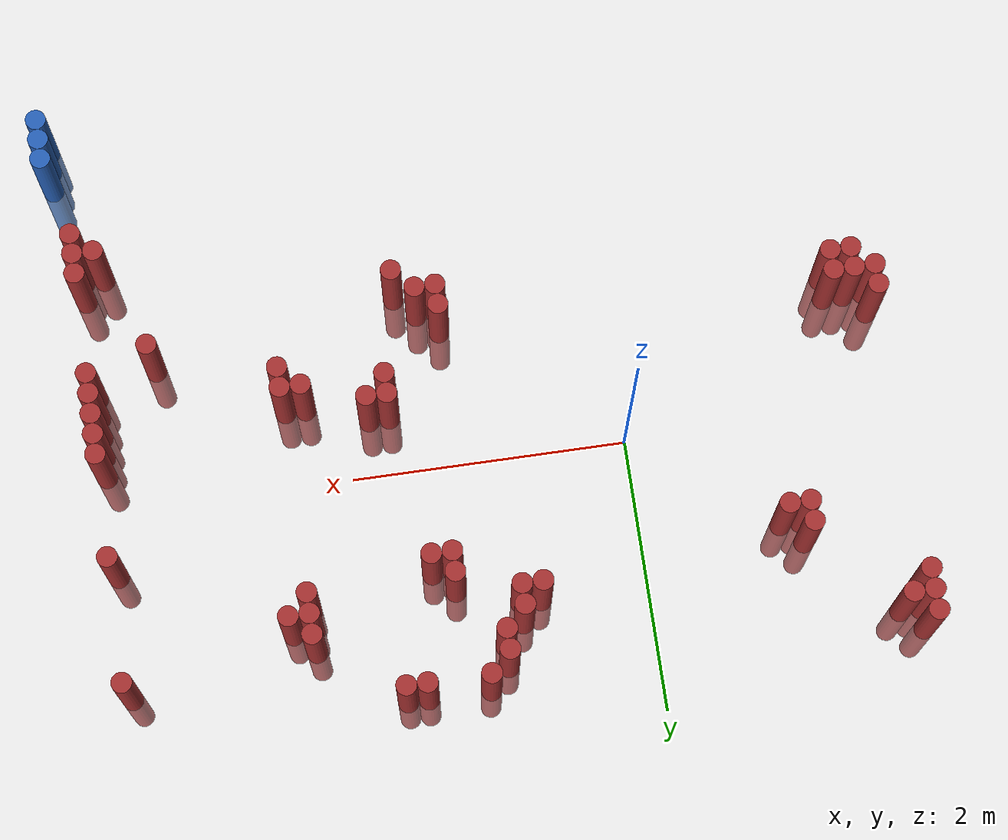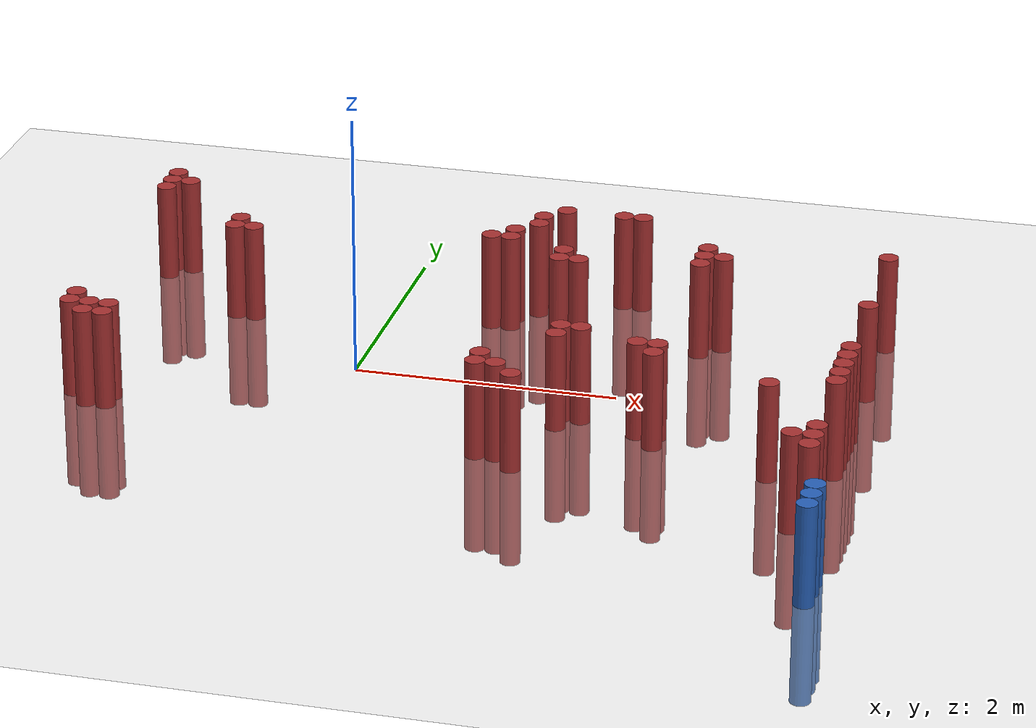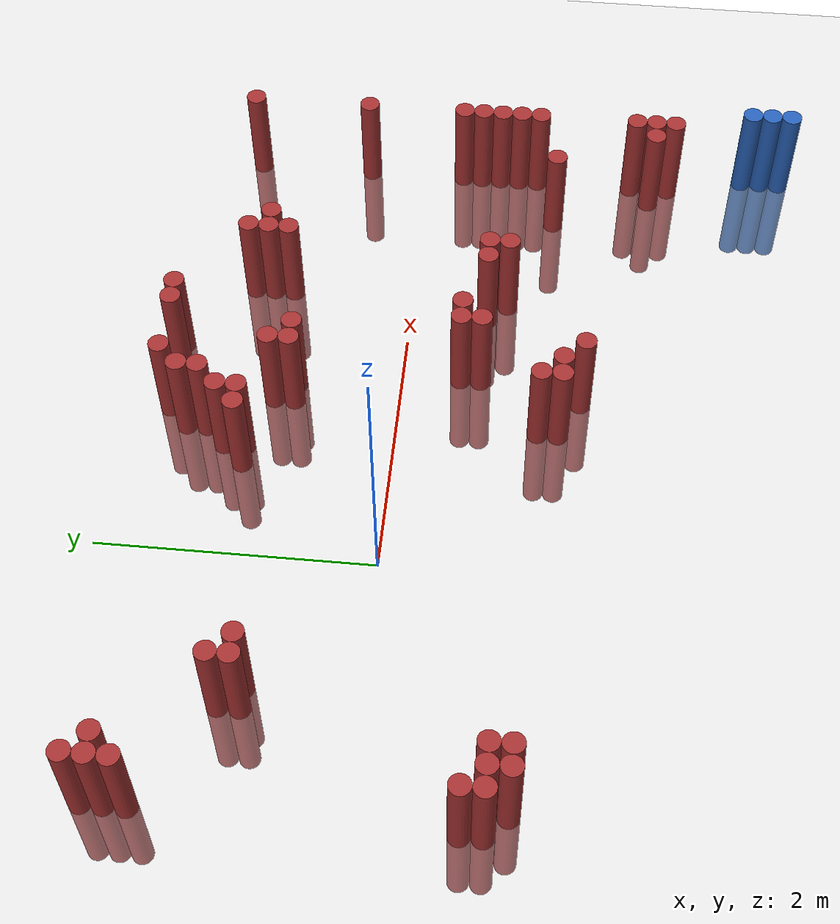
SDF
<sdf version="1.6">
 <world name="default">
  <model name="ground_plane">
   <static>1</static>
   <link name="link">
    <collision name="collision">
     <geometry><plane><normal>0 0 1</normal><size>100 100</size></plane></geometry>
     <surface><friction><ode><mu>100</mu><mu2>50</mu2></ode></friction></surface>
    </collision>
    <visual name="visual">
     <cast_shadows>0</cast_shadows>
     <geometry><plane><normal>0 0 1</normal><size>100 100</size></plane></geometry>
     <material>
      <script><uri>file://media/materials/scripts/gazebo.material</uri><name>Gazebo/Grey</name></script>
     </material>
    </visual>
   </link>
  </model>
  <model name="unit_cylinder_76">
   <static>1</static>
   <pose>3.925000 -2.825000 0.000000 0.000000 0.000000 0.000000</pose>
   <link name="link">
    <inertial>
     <mass>1</mass>
     <inertia><ixx>0.145833</ixx><ixy>0</ixy><ixz>0</ixz><iyy>0.145833</iyy><iyz>0</iyz><izz>0.125</izz></inertia>
    </inertial>
    <collision name="collision">
     <geometry><cylinder><radius>0.075000</radius><length>1.5</length></cylinder></geometry>
    </collision>
    <visual name="visual">
     <geometry><cylinder><radius>0.075000</radius><length>1.5</length></cylinder></geometry>
     <material>
      <ambient>0.152000 0.379000 0.720000 1</ambient>
      <diffuse>0.152000 0.379000 0.720000 1</diffuse>
     </material>
     <material>
      <script><name>Gazebo/Grey</name><uri>file://media/materials/scripts/gazebo.material</uri></script>
     </material>
    </visual>
   </link>
  </model>
  <model name="unit_cylinder_78">
   <static>1</static>
   <pose>3.925000 -2.675000 0.000000 0.000000 0.000000 0.000000</pose>
   <link name="link">
    <inertial>
     <mass>1</mass>
     <inertia><ixx>0.145833</ixx><ixy>0</ixy><ixz>0</ixz><iyy>0.145833</iyy><iyz>0</iyz><izz>0.125</izz></inertia>
    </inertial>
    <collision name="collision">
     <geometry><cylinder><radius>0.075000</radius><length>1.5</length></cylinder></geometry>
    </collision>
    <visual name="visual">
     <geometry><cylinder><radius>0.075000</radius><length>1.5</length></cylinder></geometry>
     <material>
      <ambient>0.152000 0.379000 0.720000 1</ambient>
      <diffuse>0.152000 0.379000 0.720000 1</diffuse>
     </material>
     <material>
      <script><name>Gazebo/Grey</name><uri>file://media/materials/scripts/gazebo.material</uri></script>
     </material>
    </visual>
   </link>
  </model>
  <model name="unit_cylinder_80">
   <static>1</static>
   <pose>3.925000 -2.525000 0.000000 0.000000 0.000000 0.000000</pose>
   <link name="link">
    <inertial>
     <mass>1</mass>
     <inertia><ixx>0.145833</ixx><ixy>0</ixy><ixz>0</ixz><iyy>0.145833</iyy><iyz>0</iyz><izz>0.125</izz></inertia>
    </inertial>
    <collision name="collision">
     <geometry><cylinder><radius>0.075000</radius><length>1.5</length></cylinder></geometry>
    </collision>
    <visual name="visual">
     <geometry><cylinder><radius>0.075000</radius><length>1.5</length></cylinder></geometry>
     <material>
      <ambient>0.152000 0.379000 0.720000 1</ambient>
      <diffuse>0.152000 0.379000 0.720000 1</diffuse>
     </material>
     <material>
      <script><name>Gazebo/Grey</name><uri>file://media/materials/scripts/gazebo.material</uri></script>
     </material>
    </visual>
   </link>
  </model>
  <model name="unit_cylinder_319">
   <static>1</static>
   <pose>-1.925000 -0.875000 0.000000 0.000000 0.000000 0.000000</pose>
   <link name="link">
    <inertial>
     <mass>1</mass>
     <inertia><ixx>0.145833</ixx><ixy>0</ixy><ixz>0</ixz><iyy>0.145833</iyy><iyz>0</iyz><izz>0.125</izz></inertia>
    </inertial>
    <collision name="collision">
     <geometry><cylinder><radius>0.075000</radius><length>1.5</length></cylinder></geometry>
    </collision>
    <visual name="visual">
     <geometry><cylinder><radius>0.075000</radius><length>1.5</length></cylinder></geometry>
     <material>
      <ambient>0.648000 0.192000 0.192000 1</ambient>
      <diffuse>0.648000 0.192000 0.192000 1</diffuse>
     </material>
     <material>
      <script><name>Gazebo/Grey</name><uri>file://media/materials/scripts/gazebo.material</uri></script>
     </material>
    </visual>
   </link>
  </model>
  <model name="unit_cylinder_320">
   <static>1</static>
   <pose>-1.925000 -0.725000 0.000000 0.000000 0.000000 0.000000</pose>
   <link name="link">
    <inertial>
     <mass>1</mass>
     <inertia><ixx>0.145833</ixx><ixy>0</ixy><ixz>0</ixz><iyy>0.145833</iyy><iyz>0</iyz><izz>0.125</izz></inertia>
    </inertial>
    <collision name="collision">
     <geometry><cylinder><radius>0.075000</radius><length>1.5</length></cylinder></geometry>
    </collision>
    <visual name="visual">
     <geometry><cylinder><radius>0.075000</radius><length>1.5</length></cylinder></geometry>
     <material>
      <ambient>0.648000 0.192000 0.192000 1</ambient>
      <diffuse>0.648000 0.192000 0.192000 1</diffuse>
     </material>
     <material>
      <script><name>Gazebo/Grey</name><uri>file://media/materials/scripts/gazebo.material</uri></script>
     </material>
    </visual>
   </link>
  </model>
  <model name="unit_cylinder_321">
   <static>1</static>
   <pose>-1.925000 1.375000 0.000000 0.000000 0.000000 0.000000</pose>
   <link name="link">
    <inertial>
     <mass>1</mass>
     <inertia><ixx>0.145833</ixx><ixy>0</ixy><ixz>0</ixz><iyy>0.145833</iyy><iyz>0</iyz><izz>0.125</izz></inertia>
    </inertial>
    <collision name="collision">
     <geometry><cylinder><radius>0.075000</radius><length>1.5</length></cylinder></geometry>
    </collision>
    <visual name="visual">
     <geometry><cylinder><radius>0.075000</radius><length>1.5</length></cylinder></geometry>
     <material>
      <ambient>0.648000 0.192000 0.192000 1</ambient>
      <diffuse>0.648000 0.192000 0.192000 1</diffuse>
     </material>
     <material>
      <script><name>Gazebo/Grey</name><uri>file://media/materials/scripts/gazebo.material</uri></script>
     </material>
    </visual>
   </link>
  </model>
  <model name="unit_cylinder_322">
   <static>1</static>
   <pose>-1.925000 1.525000 0.000000 0.000000 0.000000 0.000000</pose>
   <link name="link">
    <inertial>
     <mass>1</mass>
     <inertia><ixx>0.145833</ixx><ixy>0</ixy><ixz>0</ixz><iyy>0.145833</iyy><iyz>0</iyz><izz>0.125</izz></inertia>
    </inertial>
    <collision name="collision">
     <geometry><cylinder><radius>0.075000</radius><length>1.5</length></cylinder></geometry>
    </collision>
    <visual name="visual">
     <geometry><cylinder><radius>0.075000</radius><length>1.5</length></cylinder></geometry>
     <material>
      <ambient>0.648000 0.192000 0.192000 1</ambient>
      <diffuse>0.648000 0.192000 0.192000 1</diffuse>
     </material>
     <material>
      <script><name>Gazebo/Grey</name><uri>file://media/materials/scripts/gazebo.material</uri></script>
     </material>
    </visual>
   </link>
  </model>
  <model name="unit_cylinder_323">
   <static>1</static>
   <pose>-1.925000 1.675000 0.000000 0.000000 0.000000 0.000000</pose>
   <link name="link">
    <inertial>
     <mass>1</mass>
     <inertia><ixx>0.145833</ixx><ixy>0</ixy><ixz>0</ixz><iyy>0.145833</iyy><iyz>0</iyz><izz>0.125</izz></inertia>
    </inertial>
    <collision name="collision">
     <geometry><cylinder><radius>0.075000</radius><length>1.5</length></cylinder></geometry>
    </collision>
    <visual name="visual">
     <geometry><cylinder><radius>0.075000</radius><length>1.5</length></cylinder></geometry>
     <material>
      <ambient>0.648000 0.192000 0.192000 1</ambient>
      <diffuse>0.648000 0.192000 0.192000 1</diffuse>
     </material>
     <material>
      <script><name>Gazebo/Grey</name><uri>file://media/materials/scripts/gazebo.material</uri></script>
     </material>
    </visual>
   </link>
  </model>
  <model name="unit_cylinder_327">
   <static>1</static>
   <pose>-1.775000 -1.025000 0.000000 0.000000 0.000000 0.000000</pose>
   <link name="link">
    <inertial>
     <mass>1</mass>
     <inertia><ixx>0.145833</ixx><ixy>0</ixy><ixz>0</ixz><iyy>0.145833</iyy><iyz>0</iyz><izz>0.125</izz></inertia>
    </inertial>
    <collision name="collision">
     <geometry><cylinder><radius>0.075000</radius><length>1.5</length></cylinder></geometry>
    </collision>
    <visual name="visual">
     <geometry><cylinder><radius>0.075000</radius><length>1.5</length></cylinder></geometry>
     <material>
      <ambient>0.648000 0.192000 0.192000 1</ambient>
      <diffuse>0.648000 0.192000 0.192000 1</diffuse>
     </material>
     <material>
      <script><name>Gazebo/Grey</name><uri>file://media/materials/scripts/gazebo.material</uri></script>
     </material>
    </visual>
   </link>
  </model>
  <model name="unit_cylinder_328">
   <static>1</static>
   <pose>-1.775000 -0.875000 0.000000 0.000000 0.000000 0.000000</pose>
   <link name="link">
    <inertial>
     <mass>1</mass>
     <inertia><ixx>0.145833</ixx><ixy>0</ixy><ixz>0</ixz><iyy>0.145833</iyy><iyz>0</iyz><izz>0.125</izz></inertia>
    </inertial>
    <collision name="collision">
     <geometry><cylinder><radius>0.075000</radius><length>1.5</length></cylinder></geometry>
    </collision>
    <visual name="visual">
     <geometry><cylinder><radius>0.075000</radius><length>1.5</length></cylinder></geometry>
     <material>
      <ambient>0.648000 0.192000 0.192000 1</ambient>
      <diffuse>0.648000 0.192000 0.192000 1</diffuse>
     </material>
     <material>
      <script><name>Gazebo/Grey</name><uri>file://media/materials/scripts/gazebo.material</uri></script>
     </material>
    </visual>
   </link>
  </model>
  <model name="unit_cylinder_329">
   <static>1</static>
   <pose>-1.775000 1.525000 0.000000 0.000000 0.000000 0.000000</pose>
   <link name="link">
    <inertial>
     <mass>1</mass>
     <inertia><ixx>0.145833</ixx><ixy>0</ixy><ixz>0</ixz><iyy>0.145833</iyy><iyz>0</iyz><izz>0.125</izz></inertia>
    </inertial>
    <collision name="collision">
     <geometry><cylinder><radius>0.075000</radius><length>1.5</length></cylinder></geometry>
    </collision>
    <visual name="visual">
     <geometry><cylinder><radius>0.075000</radius><length>1.5</length></cylinder></geometry>
     <material>
      <ambient>0.648000 0.192000 0.192000 1</ambient>
      <diffuse>0.648000 0.192000 0.192000 1</diffuse>
     </material>
     <material>
      <script><name>Gazebo/Grey</name><uri>file://media/materials/scripts/gazebo.material</uri></script>
     </material>
    </visual>
   </link>
  </model>
  <model name="unit_cylinder_336">
   <static>1</static>
   <pose>-1.625000 -1.025000 0.000000 0.000000 0.000000 0.000000</pose>
   <link name="link">
    <inertial>
     <mass>1</mass>
     <inertia><ixx>0.145833</ixx><ixy>0</ixy><ixz>0</ixz><iyy>0.145833</iyy><iyz>0</iyz><izz>0.125</izz></inertia>
    </inertial>
    <collision name="collision">
     <geometry><cylinder><radius>0.075000</radius><length>1.5</length></cylinder></geometry>
    </collision>
    <visual name="visual">
     <geometry><cylinder><radius>0.075000</radius><length>1.5</length></cylinder></geometry>
     <material>
      <ambient>0.648000 0.192000 0.192000 1</ambient>
      <diffuse>0.648000 0.192000 0.192000 1</diffuse>
     </material>
     <material>
      <script><name>Gazebo/Grey</name><uri>file://media/materials/scripts/gazebo.material</uri></script>
     </material>
    </visual>
   </link>
  </model>
  <model name="unit_cylinder_337">
   <static>1</static>
   <pose>-1.625000 -0.875000 0.000000 0.000000 0.000000 0.000000</pose>
   <link name="link">
    <inertial>
     <mass>1</mass>
     <inertia><ixx>0.145833</ixx><ixy>0</ixy><ixz>0</ixz><iyy>0.145833</iyy><iyz>0</iyz><izz>0.125</izz></inertia>
    </inertial>
    <collision name="collision">
     <geometry><cylinder><radius>0.075000</radius><length>1.5</length></cylinder></geometry>
    </collision>
    <visual name="visual">
     <geometry><cylinder><radius>0.075000</radius><length>1.5</length></cylinder></geometry>
     <material>
      <ambient>0.648000 0.192000 0.192000 1</ambient>
      <diffuse>0.648000 0.192000 0.192000 1</diffuse>
     </material>
     <material>
      <script><name>Gazebo/Grey</name><uri>file://media/materials/scripts/gazebo.material</uri></script>
     </material>
    </visual>
   </link>
  </model>
  <model name="unit_cylinder_356">
   <static>1</static>
   <pose>-1.175000 0.775000 0.000000 0.000000 0.000000 0.000000</pose>
   <link name="link">
    <inertial>
     <mass>1</mass>
     <inertia><ixx>0.145833</ixx><ixy>0</ixy><ixz>0</ixz><iyy>0.145833</iyy><iyz>0</iyz><izz>0.125</izz></inertia>
    </inertial>
    <collision name="collision">
     <geometry><cylinder><radius>0.075000</radius><length>1.5</length></cylinder></geometry>
    </collision>
    <visual name="visual">
     <geometry><cylinder><radius>0.075000</radius><length>1.5</length></cylinder></geometry>
     <material>
      <ambient>0.648000 0.192000 0.192000 1</ambient>
      <diffuse>0.648000 0.192000 0.192000 1</diffuse>
     </material>
     <material>
      <script><name>Gazebo/Grey</name><uri>file://media/materials/scripts/gazebo.material</uri></script>
     </material>
    </visual>
   </link>
  </model>
  <model name="unit_cylinder_357">
   <static>1</static>
   <pose>-1.175000 0.925000 0.000000 0.000000 0.000000 0.000000</pose>
   <link name="link">
    <inertial>
     <mass>1</mass>
     <inertia><ixx>0.145833</ixx><ixy>0</ixy><ixz>0</ixz><iyy>0.145833</iyy><iyz>0</iyz><izz>0.125</izz></inertia>
    </inertial>
    <collision name="collision">
     <geometry><cylinder><radius>0.075000</radius><length>1.5</length></cylinder></geometry>
    </collision>
    <visual name="visual">
     <geometry><cylinder><radius>0.075000</radius><length>1.5</length></cylinder></geometry>
     <material>
      <ambient>0.648000 0.192000 0.192000 1</ambient>
      <diffuse>0.648000 0.192000 0.192000 1</diffuse>
     </material>
     <material>
      <script><name>Gazebo/Grey</name><uri>file://media/materials/scripts/gazebo.material</uri></script>
     </material>
    </visual>
   </link>
  </model>
  <model name="unit_cylinder_364">
   <static>1</static>
   <pose>-1.025000 0.775000 0.000000 0.000000 0.000000 0.000000</pose>
   <link name="link">
    <inertial>
     <mass>1</mass>
     <inertia><ixx>0.145833</ixx><ixy>0</ixy><ixz>0</ixz><iyy>0.145833</iyy><iyz>0</iyz><izz>0.125</izz></inertia>
    </inertial>
    <collision name="collision">
     <geometry><cylinder><radius>0.075000</radius><length>1.5</length></cylinder></geometry>
    </collision>
    <visual name="visual">
     <geometry><cylinder><radius>0.075000</radius><length>1.5</length></cylinder></geometry>
     <material>
      <ambient>0.648000 0.192000 0.192000 1</ambient>
      <diffuse>0.648000 0.192000 0.192000 1</diffuse>
     </material>
     <material>
      <script><name>Gazebo/Grey</name><uri>file://media/materials/scripts/gazebo.material</uri></script>
     </material>
    </visual>
   </link>
  </model>
  <model name="unit_cylinder_389">
   <static>1</static>
   <pose>0.775000 1.075000 0.000000 0.000000 0.000000 0.000000</pose>
   <link name="link">
    <inertial>
     <mass>1</mass>
     <inertia><ixx>0.145833</ixx><ixy>0</ixy><ixz>0</ixz><iyy>0.145833</iyy><iyz>0</iyz><izz>0.125</izz></inertia>
    </inertial>
    <collision name="collision">
     <geometry><cylinder><radius>0.075000</radius><length>1.5</length></cylinder></geometry>
    </collision>
    <visual name="visual">
     <geometry><cylinder><radius>0.075000</radius><length>1.5</length></cylinder></geometry>
     <material>
      <ambient>0.648000 0.192000 0.192000 1</ambient>
      <diffuse>0.648000 0.192000 0.192000 1</diffuse>
     </material>
     <material>
      <script><name>Gazebo/Grey</name><uri>file://media/materials/scripts/gazebo.material</uri></script>
     </material>
    </visual>
   </link>
  </model>
  <model name="unit_cylinder_390">
   <static>1</static>
   <pose>0.925000 1.075000 0.000000 0.000000 0.000000 0.000000</pose>
   <link name="link">
    <inertial>
     <mass>1</mass>
     <inertia><ixx>0.145833</ixx><ixy>0</ixy><ixz>0</ixz><iyy>0.145833</iyy><iyz>0</iyz><izz>0.125</izz></inertia>
    </inertial>
    <collision name="collision">
     <geometry><cylinder><radius>0.075000</radius><length>1.5</length></cylinder></geometry>
    </collision>
    <visual name="visual">
     <geometry><cylinder><radius>0.075000</radius><length>1.5</length></cylinder></geometry>
     <material>
      <ambient>0.648000 0.192000 0.192000 1</ambient>
      <diffuse>0.648000 0.192000 0.192000 1</diffuse>
     </material>
     <material>
      <script><name>Gazebo/Grey</name><uri>file://media/materials/scripts/gazebo.material</uri></script>
     </material>
    </visual>
   </link>
  </model>
  <model name="unit_cylinder_391">
   <static>1</static>
   <pose>0.925000 1.225000 0.000000 0.000000 0.000000 0.000000</pose>
   <link name="link">
    <inertial>
     <mass>1</mass>
     <inertia><ixx>0.145833</ixx><ixy>0</ixy><ixz>0</ixz><iyy>0.145833</iyy><iyz>0</iyz><izz>0.125</izz></inertia>
    </inertial>
    <collision name="collision">
     <geometry><cylinder><radius>0.075000</radius><length>1.5</length></cylinder></geometry>
    </collision>
    <visual name="visual">
     <geometry><cylinder><radius>0.075000</radius><length>1.5</length></cylinder></geometry>
     <material>
      <ambient>0.648000 0.192000 0.192000 1</ambient>
      <diffuse>0.648000 0.192000 0.192000 1</diffuse>
     </material>
     <material>
      <script><name>Gazebo/Grey</name><uri>file://media/materials/scripts/gazebo.material</uri></script>
     </material>
    </visual>
   </link>
  </model>
  <model name="unit_cylinder_392">
   <static>1</static>
   <pose>1.075000 1.375000 0.000000 0.000000 0.000000 0.000000</pose>
   <link name="link">
    <inertial>
     <mass>1</mass>
     <inertia><ixx>0.145833</ixx><ixy>0</ixy><ixz>0</ixz><iyy>0.145833</iyy><iyz>0</iyz><izz>0.125</izz></inertia>
    </inertial>
    <collision name="collision">
     <geometry><cylinder><radius>0.075000</radius><length>1.5</length></cylinder></geometry>
    </collision>
    <visual name="visual">
     <geometry><cylinder><radius>0.075000</radius><length>1.5</length></cylinder></geometry>
     <material>
      <ambient>0.648000 0.192000 0.192000 1</ambient>
      <diffuse>0.648000 0.192000 0.192000 1</diffuse>
     </material>
     <material>
      <script><name>Gazebo/Grey</name><uri>file://media/materials/scripts/gazebo.material</uri></script>
     </material>
    </visual>
   </link>
  </model>
  <model name="unit_cylinder_393">
   <static>1</static>
   <pose>1.075000 1.525000 0.000000 0.000000 0.000000 0.000000</pose>
   <link name="link">
    <inertial>
     <mass>1</mass>
     <inertia><ixx>0.145833</ixx><ixy>0</ixy><ixz>0</ixz><iyy>0.145833</iyy><iyz>0</iyz><izz>0.125</izz></inertia>
    </inertial>
    <collision name="collision">
     <geometry><cylinder><radius>0.075000</radius><length>1.5</length></cylinder></geometry>
    </collision>
    <visual name="visual">
     <geometry><cylinder><radius>0.075000</radius><length>1.5</length></cylinder></geometry>
     <material>
      <ambient>0.648000 0.192000 0.192000 1</ambient>
      <diffuse>0.648000 0.192000 0.192000 1</diffuse>
     </material>
     <material>
      <script><name>Gazebo/Grey</name><uri>file://media/materials/scripts/gazebo.material</uri></script>
     </material>
    </visual>
   </link>
  </model>
  <model name="unit_cylinder_396">
   <static>1</static>
   <pose>1.225000 -1.175000 0.000000 0.000000 0.000000 0.000000</pose>
   <link name="link">
    <inertial>
     <mass>1</mass>
     <inertia><ixx>0.145833</ixx><ixy>0</ixy><ixz>0</ixz><iyy>0.145833</iyy><iyz>0</iyz><izz>0.125</izz></inertia>
    </inertial>
    <collision name="collision">
     <geometry><cylinder><radius>0.075000</radius><length>1.5</length></cylinder></geometry>
    </collision>
    <visual name="visual">
     <geometry><cylinder><radius>0.075000</radius><length>1.5</length></cylinder></geometry>
     <material>
      <ambient>0.648000 0.192000 0.192000 1</ambient>
      <diffuse>0.648000 0.192000 0.192000 1</diffuse>
     </material>
     <material>
      <script><name>Gazebo/Grey</name><uri>file://media/materials/scripts/gazebo.material</uri></script>
     </material>
    </visual>
   </link>
  </model>
  <model name="unit_cylinder_397">
   <static>1</static>
   <pose>1.225000 -1.025000 0.000000 0.000000 0.000000 0.000000</pose>
   <link name="link">
    <inertial>
     <mass>1</mass>
     <inertia><ixx>0.145833</ixx><ixy>0</ixy><ixz>0</ixz><iyy>0.145833</iyy><iyz>0</iyz><izz>0.125</izz></inertia>
    </inertial>
    <collision name="collision">
     <geometry><cylinder><radius>0.075000</radius><length>1.5</length></cylinder></geometry>
    </collision>
    <visual name="visual">
     <geometry><cylinder><radius>0.075000</radius><length>1.5</length></cylinder></geometry>
     <material>
      <ambient>0.648000 0.192000 0.192000 1</ambient>
      <diffuse>0.648000 0.192000 0.192000 1</diffuse>
     </material>
     <material>
      <script><name>Gazebo/Grey</name><uri>file://media/materials/scripts/gazebo.material</uri></script>
     </material>
    </visual>
   </link>
  </model>
  <model name="unit_cylinder_398">
   <static>1</static>
   <pose>1.225000 1.675000 0.000000 0.000000 0.000000 0.000000</pose>
   <link name="link">
    <inertial>
     <mass>1</mass>
     <inertia><ixx>0.145833</ixx><ixy>0</ixy><ixz>0</ixz><iyy>0.145833</iyy><iyz>0</iyz><izz>0.125</izz></inertia>
    </inertial>
    <collision name="collision">
     <geometry><cylinder><radius>0.075000</radius><length>1.5</length></cylinder></geometry>
    </collision>
    <visual name="visual">
     <geometry><cylinder><radius>0.075000</radius><length>1.5</length></cylinder></geometry>
     <material>
      <ambient>0.648000 0.192000 0.192000 1</ambient>
      <diffuse>0.648000 0.192000 0.192000 1</diffuse>
     </material>
     <material>
      <script><name>Gazebo/Grey</name><uri>file://media/materials/scripts/gazebo.material</uri></script>
     </material>
    </visual>
   </link>
  </model>
  <model name="unit_cylinder_401">
   <static>1</static>
   <pose>1.375000 -1.175000 0.000000 0.000000 0.000000 0.000000</pose>
   <link name="link">
    <inertial>
     <mass>1</mass>
     <inertia><ixx>0.145833</ixx><ixy>0</ixy><ixz>0</ixz><iyy>0.145833</iyy><iyz>0</iyz><izz>0.125</izz></inertia>
    </inertial>
    <collision name="collision">
     <geometry><cylinder><radius>0.075000</radius><length>1.5</length></cylinder></geometry>
    </collision>
    <visual name="visual">
     <geometry><cylinder><radius>0.075000</radius><length>1.5</length></cylinder></geometry>
     <material>
      <ambient>0.648000 0.192000 0.192000 1</ambient>
      <diffuse>0.648000 0.192000 0.192000 1</diffuse>
     </material>
     <material>
      <script><name>Gazebo/Grey</name><uri>file://media/materials/scripts/gazebo.material</uri></script>
     </material>
    </visual>
   </link>
  </model>
  <model name="unit_cylinder_402">
   <static>1</static>
   <pose>1.375000 0.775000 0.000000 0.000000 0.000000 0.000000</pose>
   <link name="link">
    <inertial>
     <mass>1</mass>
     <inertia><ixx>0.145833</ixx><ixy>0</ixy><ixz>0</ixz><iyy>0.145833</iyy><iyz>0</iyz><izz>0.125</izz></inertia>
    </inertial>
    <collision name="collision">
     <geometry><cylinder><radius>0.075000</radius><length>1.5</length></cylinder></geometry>
    </collision>
    <visual name="visual">
     <geometry><cylinder><radius>0.075000</radius><length>1.5</length></cylinder></geometry>
     <material>
      <ambient>0.648000 0.192000 0.192000 1</ambient>
      <diffuse>0.648000 0.192000 0.192000 1</diffuse>
     </material>
     <material>
      <script><name>Gazebo/Grey</name><uri>file://media/materials/scripts/gazebo.material</uri></script>
     </material>
    </visual>
   </link>
  </model>
  <model name="unit_cylinder_403">
   <static>1</static>
   <pose>1.375000 0.925000 0.000000 0.000000 0.000000 0.000000</pose>
   <link name="link">
    <inertial>
     <mass>1</mass>
     <inertia><ixx>0.145833</ixx><ixy>0</ixy><ixz>0</ixz><iyy>0.145833</iyy><iyz>0</iyz><izz>0.125</izz></inertia>
    </inertial>
    <collision name="collision">
     <geometry><cylinder><radius>0.075000</radius><length>1.5</length></cylinder></geometry>
    </collision>
    <visual name="visual">
     <geometry><cylinder><radius>0.075000</radius><length>1.5</length></cylinder></geometry>
     <material>
      <ambient>0.648000 0.192000 0.192000 1</ambient>
      <diffuse>0.648000 0.192000 0.192000 1</diffuse>
     </material>
     <material>
      <script><name>Gazebo/Grey</name><uri>file://media/materials/scripts/gazebo.material</uri></script>
     </material>
    </visual>
   </link>
  </model>
  <model name="unit_cylinder_405">
   <static>1</static>
   <pose>1.525000 -1.325000 0.000000 0.000000 0.000000 0.000000</pose>
   <link name="link">
    <inertial>
     <mass>1</mass>
     <inertia><ixx>0.145833</ixx><ixy>0</ixy><ixz>0</ixz><iyy>0.145833</iyy><iyz>0</iyz><izz>0.125</izz></inertia>
    </inertial>
    <collision name="collision">
     <geometry><cylinder><radius>0.075000</radius><length>1.5</length></cylinder></geometry>
    </collision>
    <visual name="visual">
     <geometry><cylinder><radius>0.075000</radius><length>1.5</length></cylinder></geometry>
     <material>
      <ambient>0.648000 0.192000 0.192000 1</ambient>
      <diffuse>0.648000 0.192000 0.192000 1</diffuse>
     </material>
     <material>
      <script><name>Gazebo/Grey</name><uri>file://media/materials/scripts/gazebo.material</uri></script>
     </material>
    </visual>
   </link>
  </model>
  <model name="unit_cylinder_406">
   <static>1</static>
   <pose>1.525000 0.775000 0.000000 0.000000 0.000000 0.000000</pose>
   <link name="link">
    <inertial>
     <mass>1</mass>
     <inertia><ixx>0.145833</ixx><ixy>0</ixy><ixz>0</ixz><iyy>0.145833</iyy><iyz>0</iyz><izz>0.125</izz></inertia>
    </inertial>
    <collision name="collision">
     <geometry><cylinder><radius>0.075000</radius><length>1.5</length></cylinder></geometry>
    </collision>
    <visual name="visual">
     <geometry><cylinder><radius>0.075000</radius><length>1.5</length></cylinder></geometry>
     <material>
      <ambient>0.648000 0.192000 0.192000 1</ambient>
      <diffuse>0.648000 0.192000 0.192000 1</diffuse>
     </material>
     <material>
      <script><name>Gazebo/Grey</name><uri>file://media/materials/scripts/gazebo.material</uri></script>
     </material>
    </visual>
   </link>
  </model>
  <model name="unit_cylinder_408">
   <static>1</static>
   <pose>1.675000 -0.575000 0.000000 0.000000 0.000000 0.000000</pose>
   <link name="link">
    <inertial>
     <mass>1</mass>
     <inertia><ixx>0.145833</ixx><ixy>0</ixy><ixz>0</ixz><iyy>0.145833</iyy><iyz>0</iyz><izz>0.125</izz></inertia>
    </inertial>
    <collision name="collision">
     <geometry><cylinder><radius>0.075000</radius><length>1.5</length></cylinder></geometry>
    </collision>
    <visual name="visual">
     <geometry><cylinder><radius>0.075000</radius><length>1.5</length></cylinder></geometry>
     <material>
      <ambient>0.648000 0.192000 0.192000 1</ambient>
      <diffuse>0.648000 0.192000 0.192000 1</diffuse>
     </material>
     <material>
      <script><name>Gazebo/Grey</name><uri>file://media/materials/scripts/gazebo.material</uri></script>
     </material>
    </visual>
   </link>
  </model>
  <model name="unit_cylinder_409">
   <static>1</static>
   <pose>1.675000 -0.425000 0.000000 0.000000 0.000000 0.000000</pose>
   <link name="link">
    <inertial>
     <mass>1</mass>
     <inertia><ixx>0.145833</ixx><ixy>0</ixy><ixz>0</ixz><iyy>0.145833</iyy><iyz>0</iyz><izz>0.125</izz></inertia>
    </inertial>
    <collision name="collision">
     <geometry><cylinder><radius>0.075000</radius><length>1.5</length></cylinder></geometry>
    </collision>
    <visual name="visual">
     <geometry><cylinder><radius>0.075000</radius><length>1.5</length></cylinder></geometry>
     <material>
      <ambient>0.648000 0.192000 0.192000 1</ambient>
      <diffuse>0.648000 0.192000 0.192000 1</diffuse>
     </material>
     <material>
      <script><name>Gazebo/Grey</name><uri>file://media/materials/scripts/gazebo.material</uri></script>
     </material>
    </visual>
   </link>
  </model>
  <model name="unit_cylinder_410">
   <static>1</static>
   <pose>1.675000 1.675000 0.000000 0.000000 0.000000 0.000000</pose>
   <link name="link">
    <inertial>
     <mass>1</mass>
     <inertia><ixx>0.145833</ixx><ixy>0</ixy><ixz>0</ixz><iyy>0.145833</iyy><iyz>0</iyz><izz>0.125</izz></inertia>
    </inertial>
    <collision name="collision">
     <geometry><cylinder><radius>0.075000</radius><length>1.5</length></cylinder></geometry>
    </collision>
    <visual name="visual">
     <geometry><cylinder><radius>0.075000</radius><length>1.5</length></cylinder></geometry>
     <material>
      <ambient>0.648000 0.192000 0.192000 1</ambient>
      <diffuse>0.648000 0.192000 0.192000 1</diffuse>
     </material>
     <material>
      <script><name>Gazebo/Grey</name><uri>file://media/materials/scripts/gazebo.material</uri></script>
     </material>
    </visual>
   </link>
  </model>
  <model name="unit_cylinder_413">
   <static>1</static>
   <pose>1.825000 -0.425000 0.000000 0.000000 0.000000 0.000000</pose>
   <link name="link">
    <inertial>
     <mass>1</mass>
     <inertia><ixx>0.145833</ixx><ixy>0</ixy><ixz>0</ixz><iyy>0.145833</iyy><iyz>0</iyz><izz>0.125</izz></inertia>
    </inertial>
    <collision name="collision">
     <geometry><cylinder><radius>0.075000</radius><length>1.5</length></cylinder></geometry>
    </collision>
    <visual name="visual">
     <geometry><cylinder><radius>0.075000</radius><length>1.5</length></cylinder></geometry>
     <material>
      <ambient>0.648000 0.192000 0.192000 1</ambient>
      <diffuse>0.648000 0.192000 0.192000 1</diffuse>
     </material>
     <material>
      <script><name>Gazebo/Grey</name><uri>file://media/materials/scripts/gazebo.material</uri></script>
     </material>
    </visual>
   </link>
  </model>
  <model name="unit_cylinder_414">
   <static>1</static>
   <pose>1.825000 1.675000 0.000000 0.000000 0.000000 0.000000</pose>
   <link name="link">
    <inertial>
     <mass>1</mass>
     <inertia><ixx>0.145833</ixx><ixy>0</ixy><ixz>0</ixz><iyy>0.145833</iyy><iyz>0</iyz><izz>0.125</izz></inertia>
    </inertial>
    <collision name="collision">
     <geometry><cylinder><radius>0.075000</radius><length>1.5</length></cylinder></geometry>
    </collision>
    <visual name="visual">
     <geometry><cylinder><radius>0.075000</radius><length>1.5</length></cylinder></geometry>
     <material>
      <ambient>0.648000 0.192000 0.192000 1</ambient>
      <diffuse>0.648000 0.192000 0.192000 1</diffuse>
     </material>
     <material>
      <script><name>Gazebo/Grey</name><uri>file://media/materials/scripts/gazebo.material</uri></script>
     </material>
    </visual>
   </link>
  </model>
  <model name="unit_cylinder_416">
   <static>1</static>
   <pose>2.275000 -0.575000 0.000000 0.000000 0.000000 0.000000</pose>
   <link name="link">
    <inertial>
     <mass>1</mass>
     <inertia><ixx>0.145833</ixx><ixy>0</ixy><ixz>0</ixz><iyy>0.145833</iyy><iyz>0</iyz><izz>0.125</izz></inertia>
    </inertial>
    <collision name="collision">
     <geometry><cylinder><radius>0.075000</radius><length>1.5</length></cylinder></geometry>
    </collision>
    <visual name="visual">
     <geometry><cylinder><radius>0.075000</radius><length>1.5</length></cylinder></geometry>
     <material>
      <ambient>0.648000 0.192000 0.192000 1</ambient>
      <diffuse>0.648000 0.192000 0.192000 1</diffuse>
     </material>
     <material>
      <script><name>Gazebo/Grey</name><uri>file://media/materials/scripts/gazebo.material</uri></script>
     </material>
    </visual>
   </link>
  </model>
  <model name="unit_cylinder_418">
   <static>1</static>
   <pose>2.425000 -0.725000 0.000000 0.000000 0.000000 0.000000</pose>
   <link name="link">
    <inertial>
     <mass>1</mass>
     <inertia><ixx>0.145833</ixx><ixy>0</ixy><ixz>0</ixz><iyy>0.145833</iyy><iyz>0</iyz><izz>0.125</izz></inertia>
    </inertial>
    <collision name="collision">
     <geometry><cylinder><radius>0.075000</radius><length>1.5</length></cylinder></geometry>
    </collision>
    <visual name="visual">
     <geometry><cylinder><radius>0.075000</radius><length>1.5</length></cylinder></geometry>
     <material>
      <ambient>0.648000 0.192000 0.192000 1</ambient>
      <diffuse>0.648000 0.192000 0.192000 1</diffuse>
     </material>
     <material>
      <script><name>Gazebo/Grey</name><uri>file://media/materials/scripts/gazebo.material</uri></script>
     </material>
    </visual>
   </link>
  </model>
  <model name="unit_cylinder_419">
   <static>1</static>
   <pose>2.425000 -0.575000 0.000000 0.000000 0.000000 0.000000</pose>
   <link name="link">
    <inertial>
     <mass>1</mass>
     <inertia><ixx>0.145833</ixx><ixy>0</ixy><ixz>0</ixz><iyy>0.145833</iyy><iyz>0</iyz><izz>0.125</izz></inertia>
    </inertial>
    <collision name="collision">
     <geometry><cylinder><radius>0.075000</radius><length>1.5</length></cylinder></geometry>
    </collision>
    <visual name="visual">
     <geometry><cylinder><radius>0.075000</radius><length>1.5</length></cylinder></geometry>
     <material>
      <ambient>0.648000 0.192000 0.192000 1</ambient>
      <diffuse>0.648000 0.192000 0.192000 1</diffuse>
     </material>
     <material>
      <script><name>Gazebo/Grey</name><uri>file://media/materials/scripts/gazebo.material</uri></script>
     </material>
    </visual>
   </link>
  </model>
  <model name="unit_cylinder_420">
   <static>1</static>
   <pose>2.425000 0.925000 0.000000 0.000000 0.000000 0.000000</pose>
   <link name="link">
    <inertial>
     <mass>1</mass>
     <inertia><ixx>0.145833</ixx><ixy>0</ixy><ixz>0</ixz><iyy>0.145833</iyy><iyz>0</iyz><izz>0.125</izz></inertia>
    </inertial>
    <collision name="collision">
     <geometry><cylinder><radius>0.075000</radius><length>1.5</length></cylinder></geometry>
    </collision>
    <visual name="visual">
     <geometry><cylinder><radius>0.075000</radius><length>1.5</length></cylinder></geometry>
     <material>
      <ambient>0.648000 0.192000 0.192000 1</ambient>
      <diffuse>0.648000 0.192000 0.192000 1</diffuse>
     </material>
     <material>
      <script><name>Gazebo/Grey</name><uri>file://media/materials/scripts/gazebo.material</uri></script>
     </material>
    </visual>
   </link>
  </model>
  <model name="unit_cylinder_421">
   <static>1</static>
   <pose>2.425000 1.075000 0.000000 0.000000 0.000000 0.000000</pose>
   <link name="link">
    <inertial>
     <mass>1</mass>
     <inertia><ixx>0.145833</ixx><ixy>0</ixy><ixz>0</ixz><iyy>0.145833</iyy><iyz>0</iyz><izz>0.125</izz></inertia>
    </inertial>
    <collision name="collision">
     <geometry><cylinder><radius>0.075000</radius><length>1.5</length></cylinder></geometry>
    </collision>
    <visual name="visual">
     <geometry><cylinder><radius>0.075000</radius><length>1.5</length></cylinder></geometry>
     <material>
      <ambient>0.648000 0.192000 0.192000 1</ambient>
      <diffuse>0.648000 0.192000 0.192000 1</diffuse>
     </material>
     <material>
      <script><name>Gazebo/Grey</name><uri>file://media/materials/scripts/gazebo.material</uri></script>
     </material>
    </visual>
   </link>
  </model>
  <model name="unit_cylinder_422">
   <static>1</static>
   <pose>2.425000 1.225000 0.000000 0.000000 0.000000 0.000000</pose>
   <link name="link">
    <inertial>
     <mass>1</mass>
     <inertia><ixx>0.145833</ixx><ixy>0</ixy><ixz>0</ixz><iyy>0.145833</iyy><iyz>0</iyz><izz>0.125</izz></inertia>
    </inertial>
    <collision name="collision">
     <geometry><cylinder><radius>0.075000</radius><length>1.5</length></cylinder></geometry>
    </collision>
    <visual name="visual">
     <geometry><cylinder><radius>0.075000</radius><length>1.5</length></cylinder></geometry>
     <material>
      <ambient>0.648000 0.192000 0.192000 1</ambient>
      <diffuse>0.648000 0.192000 0.192000 1</diffuse>
     </material>
     <material>
      <script><name>Gazebo/Grey</name><uri>file://media/materials/scripts/gazebo.material</uri></script>
     </material>
    </visual>
   </link>
  </model>
  <model name="unit_cylinder_425">
   <static>1</static>
   <pose>2.575000 1.075000 0.000000 0.000000 0.000000 0.000000</pose>
   <link name="link">
    <inertial>
     <mass>1</mass>
     <inertia><ixx>0.145833</ixx><ixy>0</ixy><ixz>0</ixz><iyy>0.145833</iyy><iyz>0</iyz><izz>0.125</izz></inertia>
    </inertial>
    <collision name="collision">
     <geometry><cylinder><radius>0.075000</radius><length>1.5</length></cylinder></geometry>
    </collision>
    <visual name="visual">
     <geometry><cylinder><radius>0.075000</radius><length>1.5</length></cylinder></geometry>
     <material>
      <ambient>0.648000 0.192000 0.192000 1</ambient>
      <diffuse>0.648000 0.192000 0.192000 1</diffuse>
     </material>
     <material>
      <script><name>Gazebo/Grey</name><uri>file://media/materials/scripts/gazebo.material</uri></script>
     </material>
    </visual>
   </link>
  </model>
  <model name="unit_cylinder_431">
   <static>1</static>
   <pose>3.325000 -1.025000 0.000000 0.000000 0.000000 0.000000</pose>
   <link name="link">
    <inertial>
     <mass>1</mass>
     <inertia><ixx>0.145833</ixx><ixy>0</ixy><ixz>0</ixz><iyy>0.145833</iyy><iyz>0</iyz><izz>0.125</izz></inertia>
    </inertial>
    <collision name="collision">
     <geometry><cylinder><radius>0.075000</radius><length>1.5</length></cylinder></geometry>
    </collision>
    <visual name="visual">
     <geometry><cylinder><radius>0.075000</radius><length>1.5</length></cylinder></geometry>
     <material>
      <ambient>0.648000 0.192000 0.192000 1</ambient>
      <diffuse>0.648000 0.192000 0.192000 1</diffuse>
     </material>
     <material>
      <script><name>Gazebo/Grey</name><uri>file://media/materials/scripts/gazebo.material</uri></script>
     </material>
    </visual>
   </link>
  </model>
  <model name="unit_cylinder_446">
   <static>1</static>
   <pose>3.625000 -1.775000 0.000000 0.000000 0.000000 0.000000</pose>
   <link name="link">
    <inertial>
     <mass>1</mass>
     <inertia><ixx>0.145833</ixx><ixy>0</ixy><ixz>0</ixz><iyy>0.145833</iyy><iyz>0</iyz><izz>0.125</izz></inertia>
    </inertial>
    <collision name="collision">
     <geometry><cylinder><radius>0.075000</radius><length>1.5</length></cylinder></geometry>
    </collision>
    <visual name="visual">
     <geometry><cylinder><radius>0.075000</radius><length>1.5</length></cylinder></geometry>
     <material>
      <ambient>0.648000 0.192000 0.192000 1</ambient>
      <diffuse>0.648000 0.192000 0.192000 1</diffuse>
     </material>
     <material>
      <script><name>Gazebo/Grey</name><uri>file://media/materials/scripts/gazebo.material</uri></script>
     </material>
    </visual>
   </link>
  </model>
  <model name="unit_cylinder_460">
   <static>1</static>
   <pose>3.775000 -1.925000 0.000000 0.000000 0.000000 0.000000</pose>
   <link name="link">
    <inertial>
     <mass>1</mass>
     <inertia><ixx>0.145833</ixx><ixy>0</ixy><ixz>0</ixz><iyy>0.145833</iyy><iyz>0</iyz><izz>0.125</izz></inertia>
    </inertial>
    <collision name="collision">
     <geometry><cylinder><radius>0.075000</radius><length>1.5</length></cylinder></geometry>
    </collision>
    <visual name="visual">
     <geometry><cylinder><radius>0.075000</radius><length>1.5</length></cylinder></geometry>
     <material>
      <ambient>0.648000 0.192000 0.192000 1</ambient>
      <diffuse>0.648000 0.192000 0.192000 1</diffuse>
     </material>
     <material>
      <script><name>Gazebo/Grey</name><uri>file://media/materials/scripts/gazebo.material</uri></script>
     </material>
    </visual>
   </link>
  </model>
  <model name="unit_cylinder_461">
   <static>1</static>
   <pose>3.775000 -1.775000 0.000000 0.000000 0.000000 0.000000</pose>
   <link name="link">
    <inertial>
     <mass>1</mass>
     <inertia><ixx>0.145833</ixx><ixy>0</ixy><ixz>0</ixz><iyy>0.145833</iyy><iyz>0</iyz><izz>0.125</izz></inertia>
    </inertial>
    <collision name="collision">
     <geometry><cylinder><radius>0.075000</radius><length>1.5</length></cylinder></geometry>
    </collision>
    <visual name="visual">
     <geometry><cylinder><radius>0.075000</radius><length>1.5</length></cylinder></geometry>
     <material>
      <ambient>0.648000 0.192000 0.192000 1</ambient>
      <diffuse>0.648000 0.192000 0.192000 1</diffuse>
     </material>
     <material>
      <script><name>Gazebo/Grey</name><uri>file://media/materials/scripts/gazebo.material</uri></script>
     </material>
    </visual>
   </link>
  </model>
  <model name="unit_cylinder_462">
   <static>1</static>
   <pose>3.775000 -1.625000 0.000000 0.000000 0.000000 0.000000</pose>
   <link name="link">
    <inertial>
     <mass>1</mass>
     <inertia><ixx>0.145833</ixx><ixy>0</ixy><ixz>0</ixz><iyy>0.145833</iyy><iyz>0</iyz><izz>0.125</izz></inertia>
    </inertial>
    <collision name="collision">
     <geometry><cylinder><radius>0.075000</radius><length>1.5</length></cylinder></geometry>
    </collision>
    <visual name="visual">
     <geometry><cylinder><radius>0.075000</radius><length>1.5</length></cylinder></geometry>
     <material>
      <ambient>0.648000 0.192000 0.192000 1</ambient>
      <diffuse>0.648000 0.192000 0.192000 1</diffuse>
     </material>
     <material>
      <script><name>Gazebo/Grey</name><uri>file://media/materials/scripts/gazebo.material</uri></script>
     </material>
    </visual>
   </link>
  </model>
  <model name="unit_cylinder_463">
   <static>1</static>
   <pose>3.775000 -0.875000 0.000000 0.000000 0.000000 0.000000</pose>
   <link name="link">
    <inertial>
     <mass>1</mass>
     <inertia><ixx>0.145833</ixx><ixy>0</ixy><ixz>0</ixz><iyy>0.145833</iyy><iyz>0</iyz><izz>0.125</izz></inertia>
    </inertial>
    <collision name="collision">
     <geometry><cylinder><radius>0.075000</radius><length>1.5</length></cylinder></geometry>
    </collision>
    <visual name="visual">
     <geometry><cylinder><radius>0.075000</radius><length>1.5</length></cylinder></geometry>
     <material>
      <ambient>0.648000 0.192000 0.192000 1</ambient>
      <diffuse>0.648000 0.192000 0.192000 1</diffuse>
     </material>
     <material>
      <script><name>Gazebo/Grey</name><uri>file://media/materials/scripts/gazebo.material</uri></script>
     </material>
    </visual>
   </link>
  </model>
  <model name="unit_cylinder_464">
   <static>1</static>
   <pose>3.775000 -0.725000 0.000000 0.000000 0.000000 0.000000</pose>
   <link name="link">
    <inertial>
     <mass>1</mass>
     <inertia><ixx>0.145833</ixx><ixy>0</ixy><ixz>0</ixz><iyy>0.145833</iyy><iyz>0</iyz><izz>0.125</izz></inertia>
    </inertial>
    <collision name="collision">
     <geometry><cylinder><radius>0.075000</radius><length>1.5</length></cylinder></geometry>
    </collision>
    <visual name="visual">
     <geometry><cylinder><radius>0.075000</radius><length>1.5</length></cylinder></geometry>
     <material>
      <ambient>0.648000 0.192000 0.192000 1</ambient>
      <diffuse>0.648000 0.192000 0.192000 1</diffuse>
     </material>
     <material>
      <script><name>Gazebo/Grey</name><uri>file://media/materials/scripts/gazebo.material</uri></script>
     </material>
    </visual>
   </link>
  </model>
  <model name="unit_cylinder_465">
   <static>1</static>
   <pose>3.775000 -0.575000 0.000000 0.000000 0.000000 0.000000</pose>
   <link name="link">
    <inertial>
     <mass>1</mass>
     <inertia><ixx>0.145833</ixx><ixy>0</ixy><ixz>0</ixz><iyy>0.145833</iyy><iyz>0</iyz><izz>0.125</izz></inertia>
    </inertial>
    <collision name="collision">
     <geometry><cylinder><radius>0.075000</radius><length>1.5</length></cylinder></geometry>
    </collision>
    <visual name="visual">
     <geometry><cylinder><radius>0.075000</radius><length>1.5</length></cylinder></geometry>
     <material>
      <ambient>0.648000 0.192000 0.192000 1</ambient>
      <diffuse>0.648000 0.192000 0.192000 1</diffuse>
     </material>
     <material>
      <script><name>Gazebo/Grey</name><uri>file://media/materials/scripts/gazebo.material</uri></script>
     </material>
    </visual>
   </link>
  </model>
  <model name="unit_cylinder_466">
   <static>1</static>
   <pose>3.775000 -0.425000 0.000000 0.000000 0.000000 0.000000</pose>
   <link name="link">
    <inertial>
     <mass>1</mass>
     <inertia><ixx>0.145833</ixx><ixy>0</ixy><ixz>0</ixz><iyy>0.145833</iyy><iyz>0</iyz><izz>0.125</izz></inertia>
    </inertial>
    <collision name="collision">
     <geometry><cylinder><radius>0.075000</radius><length>1.5</length></cylinder></geometry>
    </collision>
    <visual name="visual">
     <geometry><cylinder><radius>0.075000</radius><length>1.5</length></cylinder></geometry>
     <material>
      <ambient>0.648000 0.192000 0.192000 1</ambient>
      <diffuse>0.648000 0.192000 0.192000 1</diffuse>
     </material>
     <material>
      <script><name>Gazebo/Grey</name><uri>file://media/materials/scripts/gazebo.material</uri></script>
     </material>
    </visual>
   </link>
  </model>
  <model name="unit_cylinder_467">
   <static>1</static>
   <pose>3.775000 -0.275000 0.000000 0.000000 0.000000 0.000000</pose>
   <link name="link">
    <inertial>
     <mass>1</mass>
     <inertia><ixx>0.145833</ixx><ixy>0</ixy><ixz>0</ixz><iyy>0.145833</iyy><iyz>0</iyz><izz>0.125</izz></inertia>
    </inertial>
    <collision name="collision">
     <geometry><cylinder><radius>0.075000</radius><length>1.5</length></cylinder></geometry>
    </collision>
    <visual name="visual">
     <geometry><cylinder><radius>0.075000</radius><length>1.5</length></cylinder></geometry>
     <material>
      <ambient>0.648000 0.192000 0.192000 1</ambient>
      <diffuse>0.648000 0.192000 0.192000 1</diffuse>
     </material>
     <material>
      <script><name>Gazebo/Grey</name><uri>file://media/materials/scripts/gazebo.material</uri></script>
     </material>
    </visual>
   </link>
  </model>
  <model name="unit_cylinder_468">
   <static>1</static>
   <pose>3.775000 0.475000 0.000000 0.000000 0.000000 0.000000</pose>
   <link name="link">
    <inertial>
     <mass>1</mass>
     <inertia><ixx>0.145833</ixx><ixy>0</ixy><ixz>0</ixz><iyy>0.145833</iyy><iyz>0</iyz><izz>0.125</izz></inertia>
    </inertial>
    <collision name="collision">
     <geometry><cylinder><radius>0.075000</radius><length>1.5</length></cylinder></geometry>
    </collision>
    <visual name="visual">
     <geometry><cylinder><radius>0.075000</radius><length>1.5</length></cylinder></geometry>
     <material>
      <ambient>0.648000 0.192000 0.192000 1</ambient>
      <diffuse>0.648000 0.192000 0.192000 1</diffuse>
     </material>
     <material>
      <script><name>Gazebo/Grey</name><uri>file://media/materials/scripts/gazebo.material</uri></script>
     </material>
    </visual>
   </link>
  </model>
  <model name="unit_cylinder_469">
   <static>1</static>
   <pose>3.775000 1.375000 0.000000 0.000000 0.000000 0.000000</pose>
   <link name="link">
    <inertial>
     <mass>1</mass>
     <inertia><ixx>0.145833</ixx><ixy>0</ixy><ixz>0</ixz><iyy>0.145833</iyy><iyz>0</iyz><izz>0.125</izz></inertia>
    </inertial>
    <collision name="collision">
     <geometry><cylinder><radius>0.075000</radius><length>1.5</length></cylinder></geometry>
    </collision>
    <visual name="visual">
     <geometry><cylinder><radius>0.075000</radius><length>1.5</length></cylinder></geometry>
     <material>
      <ambient>0.648000 0.192000 0.192000 1</ambient>
      <diffuse>0.648000 0.192000 0.192000 1</diffuse>
     </material>
     <material>
      <script><name>Gazebo/Grey</name><uri>file://media/materials/scripts/gazebo.material</uri></script>
     </material>
    </visual>
   </link>
  </model>
 </world>
</sdf>
